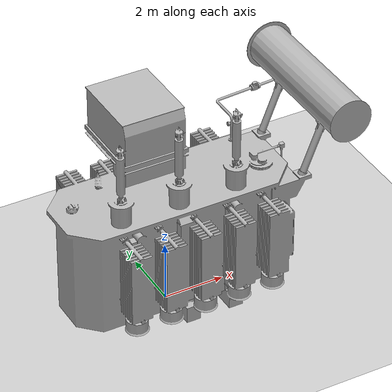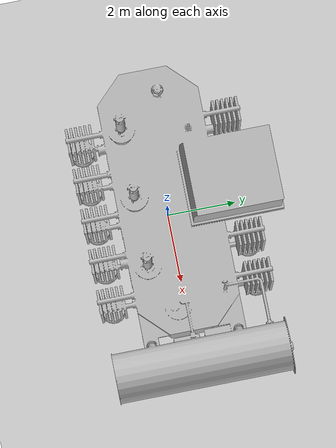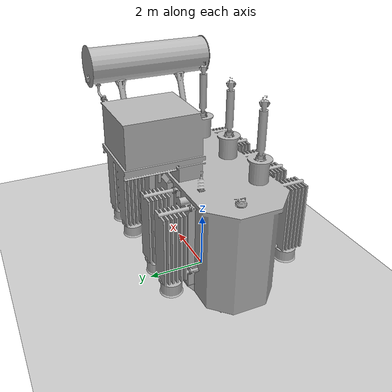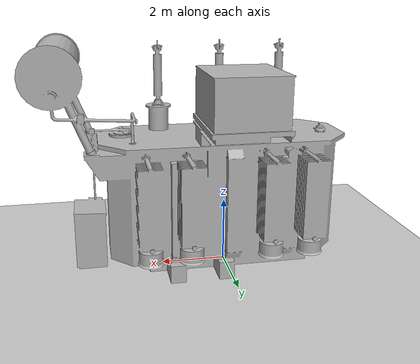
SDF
<?xml version="1.0"?>
<sdf version="1.8">
  <world name="empty_world">
    <scene>
      <grid>false</grid>
    </scene>
    <physics name="1ms" type="ignored">
      <max_step_size>0.002</max_step_size>
      <real_time_factor>1.0</real_time_factor>
    </physics>
    <plugin filename="ignition-gazebo-physics-system" name="ignition::gazebo::systems::Physics"></plugin>
    <plugin filename="ignition-gazebo-user-commands-system" name="ignition::gazebo::systems::UserCommands"></plugin>
    <plugin filename="ignition-gazebo-scene-broadcaster-system" name="ignition::gazebo::systems::SceneBroadcaster"></plugin>

    <!--Ground Plane-->
    <model name='ground_plane'>
      <static>1</static>
      <link name='link'>
        <collision name='collision'>
          <geometry>
            <plane>
              <normal>0 0 1</normal>
              <size>100 100</size>
            </plane>
          </geometry>
          <surface>
            <friction>
              <ode/>
            </friction>
            <bounce/>
            <contact/>
          </surface>
        </collision>
        <visual name='visual'>
          <geometry>
            <plane>
              <normal>0 0 1</normal>
              <size>100 100</size>
            </plane>
          </geometry>
          <material>
            <ambient>0.8 0.8 0.8 1</ambient>
            <diffuse>0.8 0.8 0.8 1</diffuse>
            <specular>0.8 0.8 0.8 1</specular>
          </material>
        </visual>
      </link>
      <pose>0 0 0 0 -0 0</pose>
    </model>

    <!--Light-->
    <light name='sun' type='directional'>
      <cast_shadows>1</cast_shadows>
      <pose>0 0 10 0 -0 0</pose>
      <diffuse>0.8 0.8 0.8 1</diffuse>
      <specular>0.2 0.2 0.2 1</specular>
      <attenuation>
        <range>1000</range>
        <constant>0.90000000000000002</constant>
        <linear>0.01</linear>
        <quadratic>0.001</quadratic>
      </attenuation>
      <direction>-0.5 0.1 -0.9</direction>
      <spot>
        <inner_angle>0</inner_angle>
        <outer_angle>0</outer_angle>
        <falloff>0</falloff>
      </spot>
    </light>

  <!--Custom Asset-->
  <include>
    <uri>model://Transformer_v2</uri>
  </include>
  </world>
</sdf>

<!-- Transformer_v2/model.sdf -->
<sdf version="1.8">
  <model name="Transformer">
    <static>true</static>
    <link name="link">
      <collision name="collision">
        <geometry>
          <mesh>
            <uri>model://Transformer_v2/Meshes/Transformer.stl</uri>
            <scale>0.001 0.001 0.001</scale>
          </mesh>
        </geometry>
      </collision>

      <visual name="visual">
        <cast_shadows>true</cast_shadows>
        <geometry>
          <mesh>
            <uri>model://Transformer_v2/Meshes/Transformer.stl</uri>
            <scale>0.001 0.001 0.001</scale>
          </mesh>
        </geometry>
        <material>
          <script>
            <uri>file://media/Transformer_v2/Materials/Scripts/transformer.material</uri>
            <name>transformerMat/Diffuse</name>
          </script>
        </material>
      </visual>
    </link>
  </model>
</sdf>
